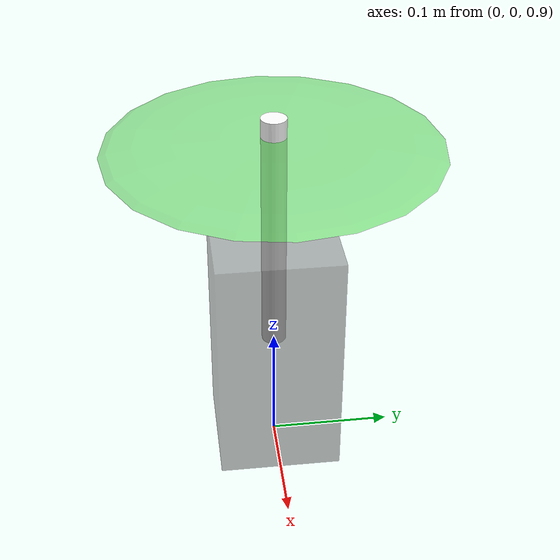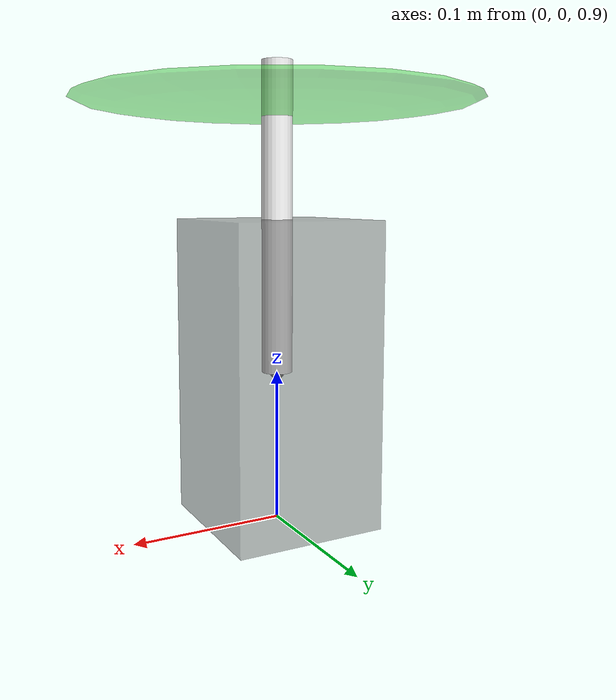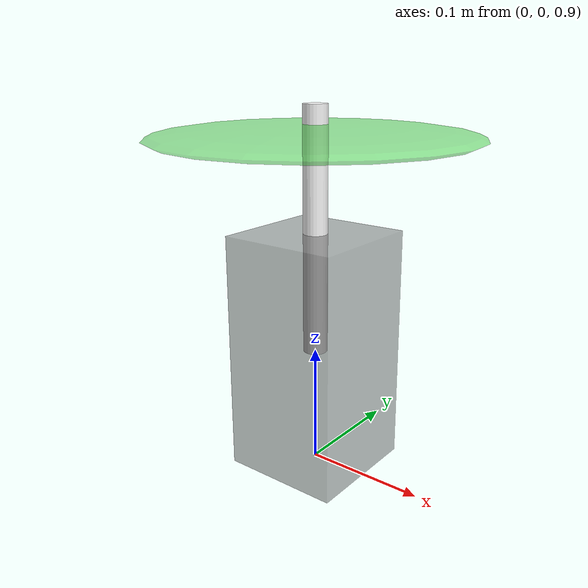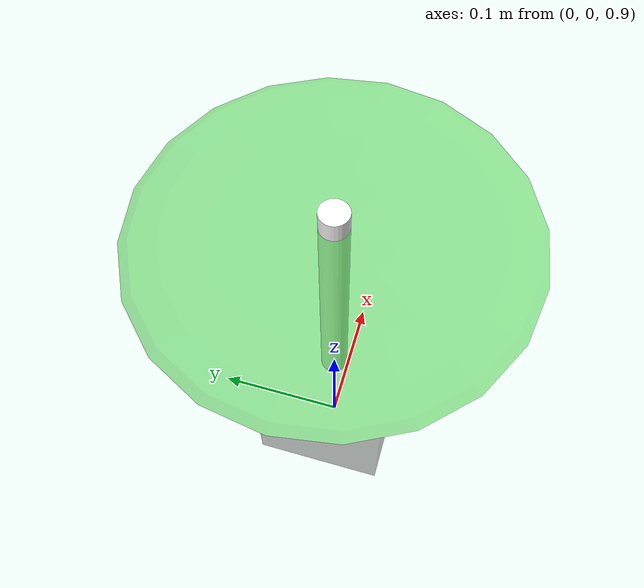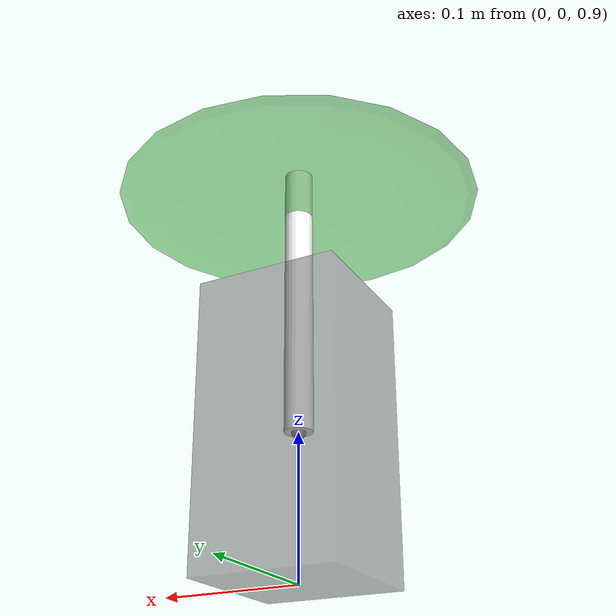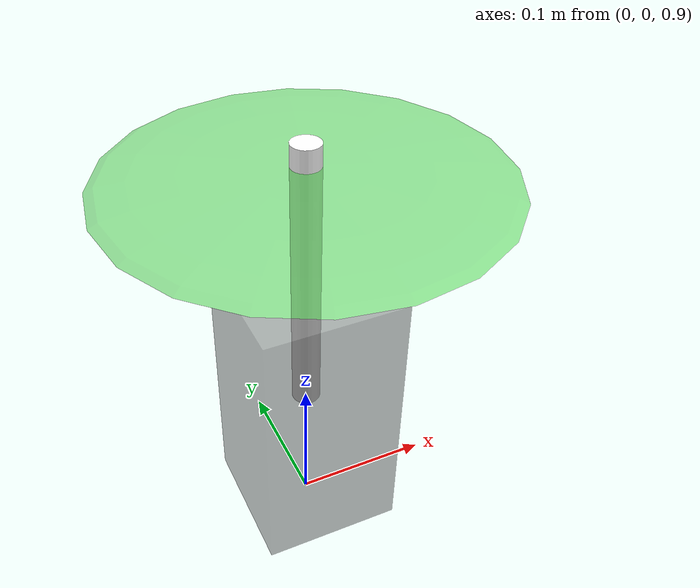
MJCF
<mujoco>
    <compiler angle="radian" assetdir="assets" eulerseq="XYZ" autolimits="true"/>
    <option gravity="0 0 -9.81" timestep="0.002" density="1.225" viscosity="1.48e-5"/>

    <visual>
        <headlight ambient="0.5 0.5 0.5"/>
    </visual>

    <asset>
        <material name="grey" rgba="0.4 0.4 0.4 0.5"/>
        <material name="white" rgba="1 1 1 1"/>
        <material name="black" rgba="0 0 0 1"/>
        <material name="green" rgba="0.2 0.8 0.2 0.5"/>

        <mesh name="prop" file="prop.obj" scale="0.001 0.001 0.001"/>
    </asset>

    <worldbody>
        <light diffuse="0.5 0.5 0.5" pos="0 0 2" dir="0 0 -1"/>
        <geom type="plane" size="1 1 0.1" rgba="0.9 0 0 1"/>

        <body name="assembly" pos="0 0 1" euler="0 0 0">
            <joint type="free"/>
            <inertial pos="0 0 0" mass="2" diaginertia="0.06185585085 0.46467853407 0.47162119244"/>
            <geom type="box" size="0.05 0.05 0.1" material="grey"/>
            <geom type="cylinder" size="0.01 0.1" pos="0 0 0.1" material="white"/>
            <geom type="ellipsoid" size=".13 .13 .01" pos="0 0 0.175" material="green"/> <!--euler="0.34906585 0 0" material="green"/-->
            <site name="thrust" pos="0 0 0.175"/> <!--euler="0.34906585 0 0"/-->
            <site name="imu"/>
        </body>
        <body name="camera_body" pos="1 1 1">
            <camera name="tracking_camera" mode="targetbodycom" target="assembly" pos="0 0 0" />
        </body>

        <camera name="camera-follower" mode="trackcom" pos="1 1 2" euler="0.9 0 2.35619"/>

    </worldbody>

    <actuator>
        <motor name="prop1" site="thrust" ctrlrange="0 100" gear="0 0 1 0 0 0"/>
    </actuator>

    <sensor>
        <gyro name="body_gyro" site="imu"/>
        <accelerometer name="body_linacc" site="imu"/>
        <framequat name="body_quat" objtype="site" objname="imu"/>
    </sensor>

</mujoco>
